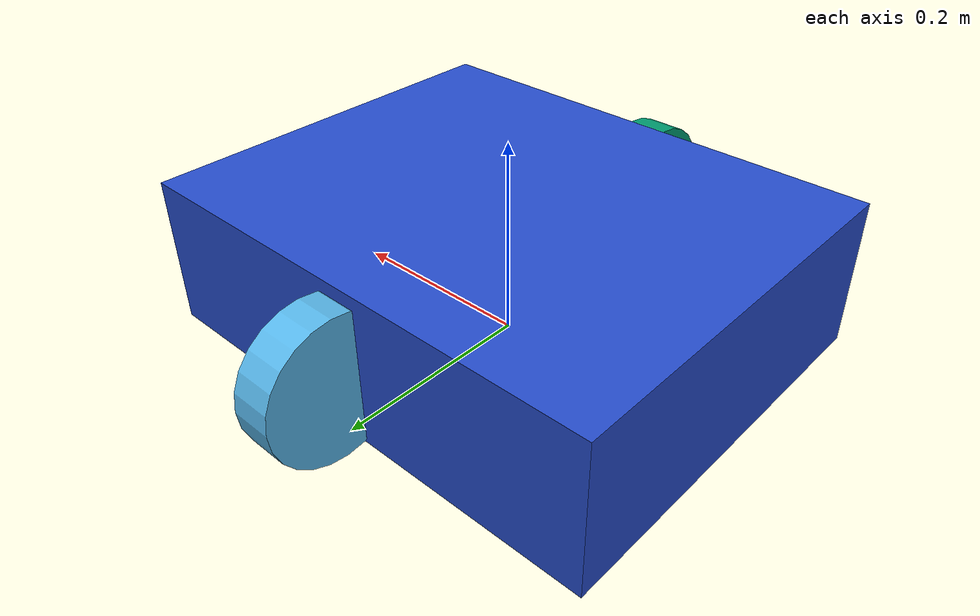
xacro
<?xml version="1.0"?>
<robot xmlns:xacro="http://www.ros.org/wiki/xacro" name="push_bot">

  <xacro:property name="base_length" value="0.5"/>
  <xacro:property name="base_width" value="0.4"/>
  <xacro:property name="base_height" value="0.15"/>
  <xacro:property name="wheel_radius" value="0.07"/>
  <xacro:property name="wheel_width" value="0.04"/>

  <!-- base link -->
  <link name="base_link">
    <visual>
      <geometry>
        <box size="${base_length} ${base_width} ${base_height}" />
      </geometry>
      <material name="blue"/>
      <origin xyz="0 0 ${base_height/2}" rpy="0 0 0"/>
    </visual>
    <collision>
      <geometry>
        <box size="${base_length} ${base_width} ${base_height}" />
      </geometry>
      <origin xyz="0 0 ${base_height/2}" rpy="0 0 0"/>
    </collision>
    <inertial>
      <mass value="6.0"/>
      <inertia ixx="0.1" ixy="0.0" ixz="0.0" iyy="0.1" iyz="0.0" izz="0.1"/>
      <origin xyz="0 0 ${base_height/2}"/>
    </inertial>
  </link>

  <!-- left wheel -->
  <link name="wheel_left_link">
    <visual>
      <geometry>
        <cylinder length="${wheel_width}" radius="${wheel_radius}" />
      </geometry>
      <origin xyz="0 0 0" rpy="0 1.5708 0"/>
    </visual>
    <collision>
      <geometry>
        <cylinder length="${wheel_width}" radius="${wheel_radius}" />
      </geometry>
      <origin xyz="0 0 0" rpy="0 1.5708 0"/>
    </collision>
    <inertial>
      <mass value="0.3"/>
      <inertia ixx="0.001" iyy="0.001" izz="0.001"/>
    </inertial>
  </link>

  <!-- right wheel (copy) -->
  <link name="wheel_right_link">
    <visual>
      <geometry>
        <cylinder length="${wheel_width}" radius="${wheel_radius}" />
      </geometry>
      <origin xyz="0 0 0" rpy="0 1.5708 0"/>
    </visual>
    <collision>
      <geometry>
        <cylinder length="${wheel_width}" radius="${wheel_radius}" />
      </geometry>
      <origin xyz="0 0 0" rpy="0 1.5708 0"/>
    </collision>
    <inertial>
      <mass value="0.3"/>
      <inertia ixx="0.001" iyy="0.001" izz="0.001"/>
    </inertial>
  </link>

  <!-- wheel joints -->
  <joint name="wheel_left_joint" type="continuous">
    <parent link="base_link"/>
    <child link="wheel_left_link"/>
    <origin xyz="0 ${base_width/2 + wheel_width/2} ${wheel_radius}" rpy="0 0 0"/>
    <axis xyz="0 1 0"/>
  </joint>

  <joint name="wheel_right_joint" type="continuous">
    <parent link="base_link"/>
    <child link="wheel_right_link"/>
    <origin xyz="0 -${base_width/2 + wheel_width/2} ${wheel_radius}" rpy="0 0 0"/>
    <axis xyz="0 1 0"/>
  </joint>

  <!-- simple front push plate -->
  <link name="bumper_link">
    <visual>
      <geometry>
        <box size="${base_length*0.8} 0.02 ${base_height*0.4}" />
      </geometry>
      <origin xyz="${base_length/2 - 0.05} 0 ${base_height*0.2}" rpy="0 0 0"/>
    </visual>
    <collision>
      <geometry>
        <box size="${base_length*0.8} 0.02 ${base_height*0.4}" />
      </geometry>
      <origin xyz="${base_length/2 - 0.05} 0 ${base_height*0.2}" rpy="0 0 0"/>
    </collision>
  </link>

  <joint name="bumper_joint" type="fixed">
    <parent link="base_link"/>
    <child link="bumper_link"/>
    <origin xyz="0 0 0" rpy="0 0 0"/>
  </joint>

</robot>
